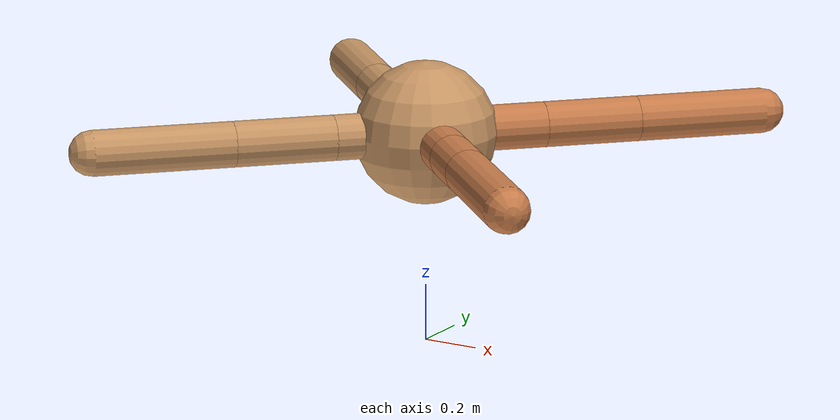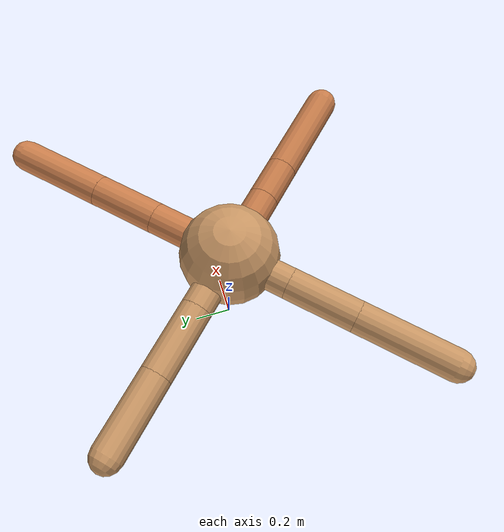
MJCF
<mujoco model="ant">
  <compiler angle="degree" coordinate="local" inertiafromgeom="true" />
  <option integrator="RK4" timestep="0.01" />
  <custom>
    <numeric data="0.0 0.0 0.55 1.0 0.0 0.0 0.0 0.0 1.0 0.0 -1.0 0.0 -1.0 0.0 1.0" name="init_qpos" />
  </custom>
  <default>
    <joint armature="1" damping="1" limited="true" />
    <geom conaffinity="0" condim="3" density="5.0" friction="1.5 0.1 0.1" margin="0.01" rgba="0.8 0.6 0.4 1" />
  </default>
  <worldbody>
    <body name="torso" pos="0 0 0.75">
      <geom name="torso_geom" pos="0 0 0" size="0.25" type="sphere" />

      <body name="front_left_leg" pos="0 0 0">
        <geom fromto="0.0 0.0 0.0 0.2993172400699825 0.2993172400699825 0.0" name="aux_1_geom" size="0.08" type="capsule" rgba=".8 .5 .3 1" />
        <body name="aux_1" pos="0.2993172400699825 0.2993172400699825 0.0">
          <joint axis="0 0 1" name="hip_1" pos="0.0 0.0 0.0" range="-40 40" type="hinge" />
          <geom fromto="0.0 0.0 0.0 0.23825291630226003 0.23825291630226003 0.0" name="left_leg_geom" size="0.08" type="capsule" rgba=".8 .5 .3 1" />
          <body pos="0.23825291630226003 0.23825291630226003 0.0" name="front_left_foot">
            <joint axis="-1 1 0" name="ankle_1" pos="0.0 0.0 0.0" range="30 100" type="hinge" />
            <geom fromto="0.0 0.0 0.0 0.3234684505646943 0.3234684505646943 0.0" name="left_ankle_geom" size="0.08" type="capsule" rgba=".8 .5 .3 1" />
          </body>
        </body>
      </body>
      <body name="front_right_leg" pos="0 0 0">
        <geom fromto="0.0 0.0 0.0 -0.23429863840003087 0.23429863840003087 0.0" name="aux_2_geom" size="0.08" type="capsule" />
        <body name="aux_2" pos="-0.23429863840003087 0.23429863840003087 0.0">
          <joint axis="0 0 1" name="hip_2" pos="0.0 0.0 0.0" range="-40 40" type="hinge" />
          <geom fromto="0.0 0.0 0.0 -0.25682670933362345 0.25682670933362345 0.0" name="right_leg_geom" size="0.08" type="capsule" />
          <body pos="-0.25682670933362345 0.25682670933362345 0.0" name="front_right_foot">
            <joint axis="1 1 0" name="ankle_2" pos="0.0 0.0 0.0" range="-100 -30" type="hinge" />
            <geom fromto="0.0 0.0 0.0 -0.28356184352866826 0.28356184352866826 0.0" name="right_ankle_geom" size="0.08" type="capsule" />
          </body>
        </body>
      </body>
      <body name="left_back_leg" pos="0 0 0">
        <geom fromto="0.0 0.0 0.0 -0.23169260760151894 -0.23169260760151894 0.0" name="aux_3_geom" size="0.08" type="capsule" />
        <body name="aux_3" pos="-0.23169260760151894 -0.23169260760151894 0.0">
          <joint axis="0 0 1" name="hip_3" pos="0.0 0.0 0.0" range="-40 40" type="hinge" />
          <geom fromto="0.0 0.0 0.0 -0.24963001077275943 -0.24963001077275943 0.0" name="back_leg_geom" size="0.08" type="capsule" />
          <body pos="-0.24963001077275943 -0.24963001077275943 0.0" name="left_back_foot">
            <joint axis="-1 1 0" name="ankle_3" pos="0.0 0.0 0.0" range="-100 -30" type="hinge" />
            <geom fromto="0.0 0.0 0.0 -0.3484930629566729 -0.3484930629566729 0.0" name="third_ankle_geom" size="0.08" type="capsule" />
          </body>
        </body>
      </body>
      <body name="right_back_leg" pos="0 0 0">
        <geom fromto="0.0 0.0 0.0 0.2561293779224748 -0.2561293779224748 0.0" name="aux_4_geom" size="0.08" type="capsule" rgba=".8 .5 .3 1" />
        <body name="aux_4" pos="0.2561293779224748 -0.2561293779224748 0.0">
          <joint axis="0 0 1" name="hip_4" pos="0.0 0.0 0.0" range="-40 40" type="hinge" />
          <geom fromto="0.0 0.0 0.0 0.14681725198675047 -0.14681725198675047 0.0" name="rightback_leg_geom" size="0.08" type="capsule" rgba=".8 .5 .3 1" />
          <body pos="0.14681725198675047 -0.14681725198675047 0.0" name="right_back_foot">
            <joint axis="1 1 0" name="ankle_4" pos="0.0 0.0 0.0" range="30 100" type="hinge" />
            <geom fromto="0.0 0.0 0.0 0.3473292804010222 -0.3473292804010222 0.0" name="fourth_ankle_geom" size="0.08" type="capsule" rgba=".8 .5 .3 1" />
          </body>
        </body>
      </body>
    </body>
  </worldbody>
  <actuator>
    <motor ctrllimited="true" ctrlrange="-1.0 1.0" joint="hip_4" gear="150" />
    <motor ctrllimited="true" ctrlrange="-1.0 1.0" joint="ankle_4" gear="150" />
    <motor ctrllimited="true" ctrlrange="-1.0 1.0" joint="hip_1" gear="150" />
    <motor ctrllimited="true" ctrlrange="-1.0 1.0" joint="ankle_1" gear="150" />
    <motor ctrllimited="true" ctrlrange="-1.0 1.0" joint="hip_2" gear="150" />
    <motor ctrllimited="true" ctrlrange="-1.0 1.0" joint="ankle_2" gear="150" />
    <motor ctrllimited="true" ctrlrange="-1.0 1.0" joint="hip_3" gear="150" />
    <motor ctrllimited="true" ctrlrange="-1.0 1.0" joint="ankle_3" gear="150" />
  </actuator>
</mujoco>
